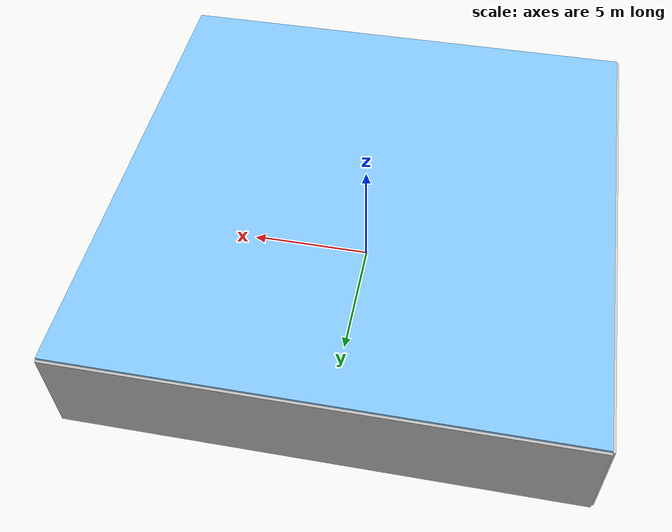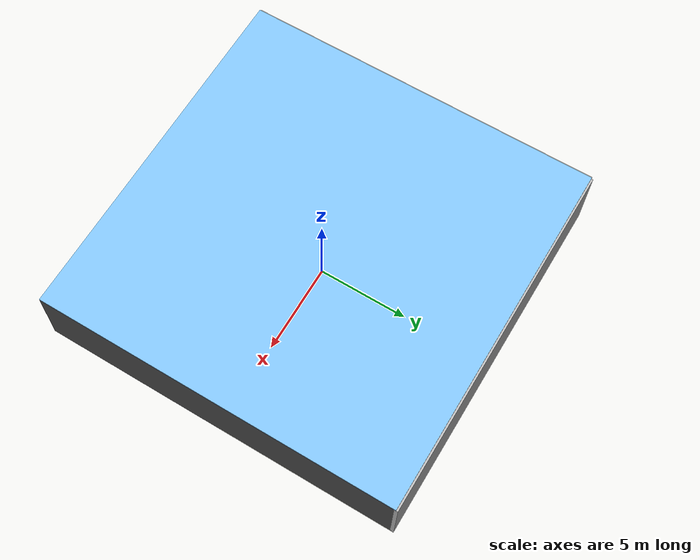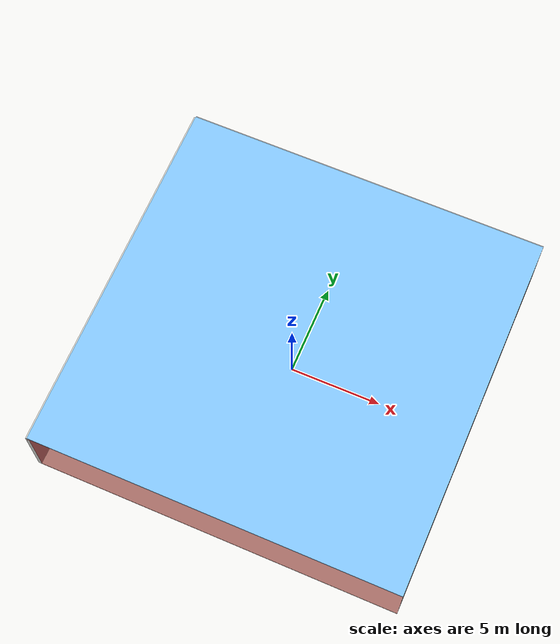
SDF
<sdf version="1.4">
 <world name="default">
  <physics type="ode">
   <max_step_size>0.001</max_step_size>
   <real_time_factor>1</real_time_factor>
   <real_time_update_rate>1000</real_time_update_rate>
   <gravity>0 0 -9.8</gravity>
  </physics>
  <scene><ambient>0.4 0.4 0.4 1</ambient><background>0.7 0.7 0.7 1</background><shadows>1</shadows></scene>
  <model name="Surrounding">
   <static>1</static>
   <link name="Ceiling">
    <collision name="Ceiling_Collision"><geometry><box><size>20 20 0.1</size></box></geometry></collision>
    <visual name="Ceiling_Visual">
     <geometry><box><size>20 20 0.1</size></box></geometry>
     <material>
      <script><uri>file://media/materials/scripts/gazebo.material</uri><name>Gazebo/SkyBlue</name></script>
     </material>
    </visual>
    <pose>0 0 4.05 0 0 0</pose>
   </link>
   <link name="Wall_South">
    <collision name="Wall_South_Collision">
     <geometry><box><size>20 0 4</size></box></geometry>
     <pose>0 0 2 0 -0 0</pose>
    </collision>
    <visual name="Wall_South_Visual">
     <pose>0 0 2 0 -0 0</pose>
     <geometry><box><size>20 0 4</size></box></geometry>
     <material>
      <script><uri>file://media/materials/scripts/gazebo.material</uri><name>Gazebo/RedTransparent</name></script>
     </material>
    </visual>
    <velocity_decay><linear>0</linear><angular>0</angular></velocity_decay>
    <pose>0 -10 0 0 -0 0</pose>
   </link>
   <link name="Wall_East">
    <collision name="Wall_21_Collision">
     <geometry><box><size>20 0 4</size></box></geometry>
     <pose>0 0 2 0 -0 0</pose>
    </collision>
    <visual name="Wall_21_Visual">
     <pose>0 0 2 0 -0 0</pose>
     <geometry><box><size>20 0 4</size></box></geometry>
     <material>
      <script><uri>file://media/materials/scripts/gazebo.material</uri><name>Gazebo/DarkGrey</name></script>
     </material>
    </visual>
    <velocity_decay><linear>0</linear><angular>0</angular></velocity_decay>
    <pose>10 0 0 0 -0 1.5708</pose>
   </link>
   <link name="Wall_North">
    <collision name="Wall_22_Collision">
     <geometry><box><size>20 0.2 4</size></box></geometry>
     <pose>0 0 2 0 -0 0</pose>
    </collision>
    <visual name="Wall_22_Visual">
     <pose>0 0 2 0 -0 0</pose>
     <geometry><box><size>20 0.2 4</size></box></geometry>
     <material>
      <script><uri>file://media/materials/scripts/gazebo.material</uri><name>Gazebo/JointAnchor</name></script>
     </material>
    </visual>
    <velocity_decay><linear>0</linear><angular>0</angular></velocity_decay>
    <pose>0 10 0 0 -0 0</pose>
   </link>
   <link name="Wall_West">
    <collision name="Wall_23_Collision">
     <geometry><box><size>20 0.2 4</size></box></geometry>
     <pose>0 0 2 0 -0 0</pose>
    </collision>
    <visual name="Wall_23_Visual">
     <pose>0 0 2 0 -0 0</pose>
     <geometry><box><size>20 0.2 4</size></box></geometry>
     <material>
      <script><uri>file://media/materials/scripts/gazebo.material</uri><name>Gazebo/CeilingTiled</name></script>
     </material>
    </visual>
    <velocity_decay><linear>0</linear><angular>0</angular></velocity_decay>
    <pose>-10 0 0 0 0 -1.5708</pose>
   </link>
   <link name="Ground_link">
    <collision name="collision">
     <pose>0 0 .05 0 -0 0</pose>
     <geometry><box><size>20 20 0.1</size></box></geometry>
    </collision>
    <visual name="visual">
     <pose>0 0 .05 0 -0 0</pose>
     <geometry><box><size>20 20 0.1</size></box></geometry>
     <material>
      <script><uri>file://media/materials/scripts/gazebo.material</uri><name>Gazebo/PaintedWall</name></script>
     </material>
    </visual>
   </link>
   <static>1</static>
  </model>
  <spherical_coordinates>
   <surface_model>EARTH_WGS84</surface_model>
   <latitude_deg>0</latitude_deg>
   <longitude_deg>0</longitude_deg>
   <elevation>0</elevation>
   <heading_deg>0</heading_deg>
  </spherical_coordinates>
  <light name="lightball_0" type="diffuse">
   <diffuse>0.8 0.8 0.8 1</diffuse>
   <specular>0.2 0.2 0.2 1</specular>
   <attenuation>
    <range>100</range>
    <constant>0.7</constant>
    <linear>0.01</linear>
    <quadratic>0.001</quadratic>
   </attenuation>
   <direction>-0.5 0.1 -0.9</direction>
   <pose>-9.69327510269 -9.58089849775 2.3492724189 0 0 0</pose>
  </light>
  <light name="lightball_1" type="diffuse">
   <diffuse>0.8 0.8 0.8 1</diffuse>
   <specular>0.2 0.2 0.2 1</specular>
   <attenuation>
    <range>100</range>
    <constant>0.7</constant>
    <linear>0.01</linear>
    <quadratic>0.001</quadratic>
   </attenuation>
   <direction>-0.5 0.1 -0.9</direction>
   <pose>-0.0293195764361 -2.60156358273 3.4982411963 0 0 0</pose>
  </light>
  <include><uri>model://cabinet</uri><pose>-1.96434543878 8.56207010791 0 0 0 2.18079044278</pose></include>
  <include><uri>model://cabinet</uri><pose>2.2608837043 -2.64653801363 0 0 0 2.15418174482</pose></include>
  <include>
   <uri>model://construction_cone</uri>
   <pose>1.28292273378 2.30381087723 0 0 0 1.83351842832</pose>
  </include>
  <include><uri>model://table</uri><pose>1.42214724478 5.438168228 0 0 0 1.95877304158</pose></include>
  <include><uri>model://table</uri><pose>3.37242561548 -6.88143218227 0 0 0 2.59535041846</pose></include>
  <include><uri>model://cabinet</uri><pose>4.27774501926 0.454696297214 0 0 0 1.10593345353</pose></include>
  <include><uri>model://table</uri><pose>5.22953032964 3.95578121228 0 0 0 0.514818175731</pose></include>
  <include><uri>model://cabinet</uri><pose>7.70450185812 -5.26306385694 0 0 0 1.79281504502</pose></include>
 </world>
</sdf>

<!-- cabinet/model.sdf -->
<sdf version="1.5">
  <model name="cabinet">
    <static>true</static>
    <link name="cabinet_bottom_plate">
      <inertial>
        <pose>0 0 -1 0 0 0</pose>
        <inertia>
          <ixx>2.050000</ixx>
          <ixy>0</ixy>
          <ixz>0</ixz>
          <iyy>2.050000</iyy>
          <iyz>0</iyz>
          <izz>2.050000</izz>
        </inertia>
        <mass>25.000000</mass>
      </inertial>
      <collision name="cabinet_bottom_plate_geom">
        <pose>0 0 0.010000 0 0 0</pose>
        <geometry>
          <box>
            <size>0.450000 0.450000 0.020000</size>
          </box>
        </geometry>
      </collision>
      <visual name="cabinet_bottom_plate_geom_visual">
        <pose>0 0 0.010000 0 0 0</pose>
        <geometry>
          <box>
            <size>0.450000 0.450000 0.020000</size>
          </box>
        </geometry>
        <material>
          <script>
            <uri>model://media/materials/scripts/gazebo.material</uri>
            <name>Gazebo/Wood</name>
          </script>
        </material>
      </visual>
      <collision name="cabinet_bottom_plate_geom_cabinet_back_plate">
        <pose>0.235000 0 0.510000 0 0 0</pose>
        <geometry>
          <box>
            <size>0.020000 0.450000 1.020000</size>
          </box>
        </geometry>
      </collision>
      <visual name="cabinet_bottom_plate_geom_cabinet_back_plate_visual">
        <pose>0.235000 0 0.510000 0 0 0</pose>
        <geometry>
          <box>
            <size>0.020000 0.450000 1.020000</size>
          </box>
        </geometry>
        <material>
          <script>
            <uri>model://media/materials/scripts/gazebo.material</uri>
            <name>Gazebo/Wood</name>
          </script>
        </material>
      </visual>
      <collision name="cabinet_bottom_plate_geom_cabinet_left_plate">
        <pose>0 0.235000 0.510000 0 0 0</pose>
        <geometry>
          <box>
            <size>0.450000 0.020000 1.020000</size>
          </box>
        </geometry>
      </collision>
      <visual name="cabinet_bottom_plate_geom_cabinet_left_plate_visual">
        <pose>0 0.235000 0.510000 0 0 0</pose>
        <geometry>
          <box>
            <size>0.450000 0.020000 1.020000</size>
          </box>
        </geometry>
        <material>
          <script>
            <uri>model://media/materials/scripts/gazebo.material</uri>
            <name>Gazebo/Wood</name>
          </script>
        </material>
      </visual>
      <collision name="cabinet_bottom_plate_geom_cabinet_middle_plate">
        <pose>0 0 0.510000 0 0 0</pose>
        <geometry>
          <box>
            <size>0.450000 0.450000 0.020000</size>
          </box>
        </geometry>
      </collision>
      <visual name="cabinet_bottom_plate_geom_cabinet_middle_plate_visual">
        <pose>0 0 0.510000 0 0 0</pose>
        <geometry>
          <box>
            <size>0.450000 0.450000 0.020000</size>
          </box>
        </geometry>
        <material>
          <script>
            <uri>model://media/materials/scripts/gazebo.material</uri>
            <name>Gazebo/Wood</name>
          </script>
        </material>
      </visual>
      <collision name="cabinet_bottom_plate_geom_cabinet_right_plate">
        <pose>0 -0.235000 0.510000 0 0 0</pose>
        <geometry>
          <box>
            <size>0.450000 0.020000 1.020000</size>
          </box>
        </geometry>
      </collision>
      <visual name="cabinet_bottom_plate_geom_cabinet_right_plate_visual">
        <pose>0 -0.235000 0.510000 0 0 0</pose>
        <geometry>
          <box>
            <size>0.450000 0.020000 1.020000</size>
          </box>
        </geometry>
        <material>
          <script>
            <uri>model://media/materials/scripts/gazebo.material</uri>
            <name>Gazebo/Wood</name>
          </script>
        </material>
      </visual>
      <collision name="cabinet_bottom_plate_geom_cabinet_top_plate">
        <pose>0 0 1.010000 0 0 0</pose>
        <geometry>
          <box>
            <size>0.450000 0.450000 0.020000</size>
          </box>
        </geometry>
      </collision>
      <visual name="cabinet_bottom_plate_geom_cabinet_top_plate_visual">
        <pose>0 0 1.010000 0 0 0</pose>
        <geometry>
          <box>
            <size>0.450000 0.450000 0.020000</size>
          </box>
        </geometry>
        <material>
          <script>
            <uri>model://media/materials/scripts/gazebo.material</uri>
            <name>Gazebo/Wood</name>
          </script>
        </material>
      </visual>
    </link>
  </model>
</sdf>

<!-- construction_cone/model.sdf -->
<sdf version="1.5">
  <model name="Construction Cone">
    <link name="link">
      <collision name="collision">
        <geometry>
          <mesh>
            <scale>10 10 10</scale>
            <uri>file://isr-testbed/construction_cone/meshes/construction_cone.dae</uri>
          </mesh>
        </geometry>
      </collision>
      <visual name="visual">
        <geometry>
          <mesh>
            <scale>10 10 10</scale>
            <uri>file://isr-testbed/construction_cone/meshes/construction_cone.dae</uri>
          </mesh>
        </geometry>
      </visual>
    </link>
  </model>
</sdf>

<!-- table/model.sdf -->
<sdf version="1.5">
  <model name="table">
    <static>true</static>
    <link name="link">
      <collision name="surface">
        <pose>0 0 1.0 0 0 0</pose>
        <geometry>
          <box>
            <size>1.5 0.8 0.03</size>
          </box>
        </geometry>
        <surface>
          <friction>
            <ode>
              <mu>0.6</mu>
              <mu2>0.6</mu2>
            </ode>
          </friction>
        </surface>
      </collision>
      <visual name="visual1">
        <pose>0 0 1.0 0 0 0</pose>
        <geometry>
          <box>
            <size>1.5 0.8 0.03</size>
          </box>
        </geometry>
        <material>
          <script>
            <uri>model://media/materials/scripts/gazebo.material</uri>
            <name>Gazebo/Wood</name>
          </script>
        </material>
      </visual>
      <collision name="front_left_leg">
        <pose>0.68 0.38 0.5 0 0 0</pose>
        <geometry>
          <cylinder>
            <radius>0.02</radius>
            <length>1.0</length>
          </cylinder>
        </geometry>
      </collision>
      <visual name="front_left_leg">
        <pose>0.68 0.38 0.5 0 0 0</pose>
        <geometry>
          <cylinder>
            <radius>0.02</radius>
            <length>1.0</length>
          </cylinder>
        </geometry>
        <material>
          <script>
            <uri>model://media/materials/scripts/gazebo.material</uri>
            <name>Gazebo/Grey</name>
          </script>
        </material>
      </visual>
      <collision name="front_right_leg">
        <pose>0.68 -0.38 0.5 0 0 0</pose>
        <geometry>
          <cylinder>
            <radius>0.02</radius>
            <length>1.0</length>
          </cylinder>
        </geometry>
      </collision>
      <visual name="front_right_leg">
        <pose>0.68 -0.38 0.5 0 0 0</pose>
        <geometry>
          <cylinder>
            <radius>0.02</radius>
            <length>1.0</length>
          </cylinder>
        </geometry>
        <material>
          <script>
            <uri>model://media/materials/scripts/gazebo.material</uri>
            <name>Gazebo/Grey</name>
          </script>
        </material>
      </visual>
      <collision name="back_right_leg">
        <pose>-0.68 -0.38 0.5 0 0 0</pose>
        <geometry>
          <cylinder>
            <radius>0.02</radius>
            <length>1.0</length>
          </cylinder>
        </geometry>
      </collision>
      <visual name="back_right_leg">
        <pose>-0.68 -0.38 0.5 0 0 0</pose>
        <geometry>
          <cylinder>
            <radius>0.02</radius>
            <length>1.0</length>
          </cylinder>
        </geometry>
        <material>
          <script>
            <uri>model://media/materials/scripts/gazebo.material</uri>
            <name>Gazebo/Grey</name>
          </script>
        </material>
      </visual>
      <collision name="back_left_leg">
        <pose>-0.68 0.38 0.5 0 0 0</pose>
        <geometry>
          <cylinder>
            <radius>0.02</radius>
            <length>1.0</length>
          </cylinder>
        </geometry>
      </collision>
      <visual name="back_left_leg">
        <pose>-0.68 0.38 0.5 0 0 0</pose>
        <geometry>
          <cylinder>
            <radius>0.02</radius>
            <length>1.0</length>
          </cylinder>
        </geometry>
        <material>
          <script>
            <uri>model://media/materials/scripts/gazebo.material</uri>
            <name>Gazebo/Grey</name>
          </script>
        </material>
      </visual>
    </link>
  </model>
</sdf>
